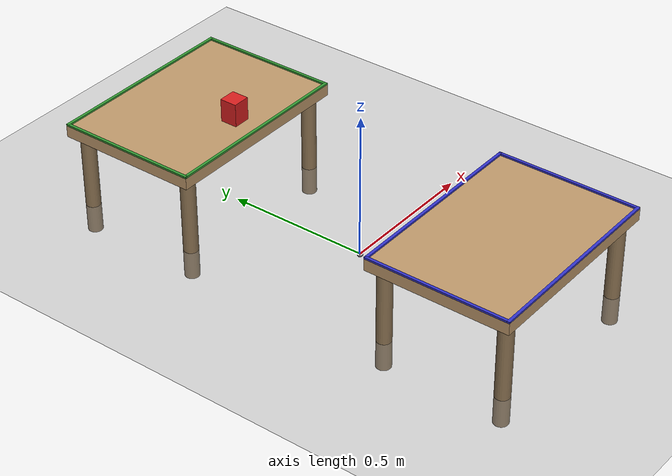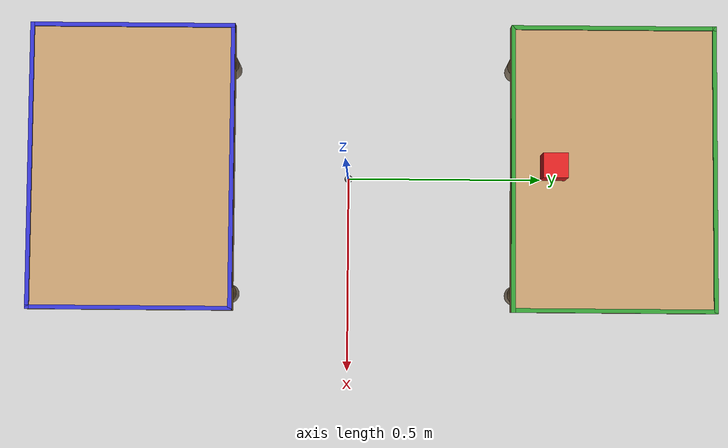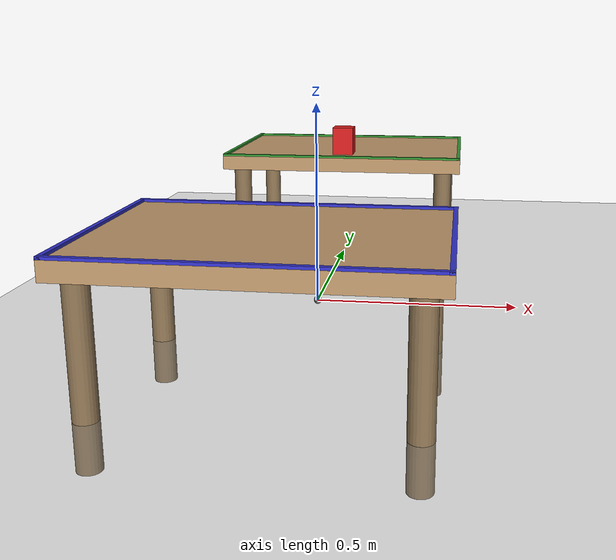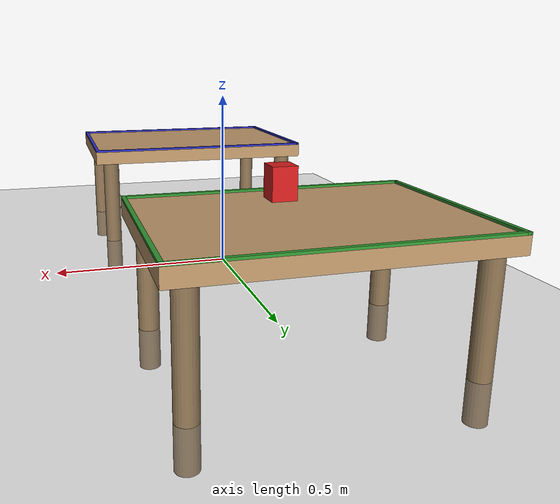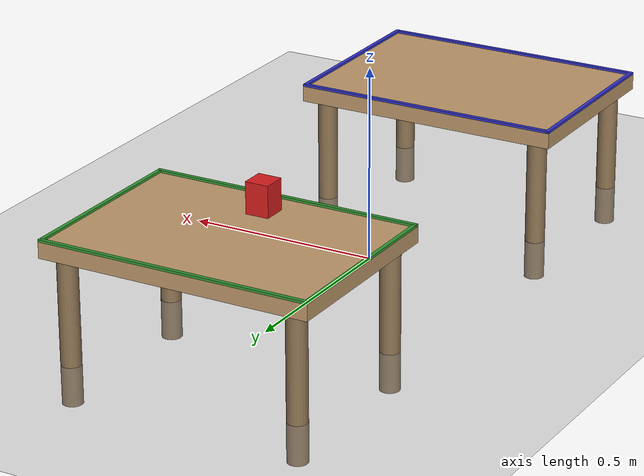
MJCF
<mujoco model="pickandplace">
  <compiler angle="radian" meshdir="meshes" autolimits="true"/>
  <option timestep="0.002" gravity="0 0 -9.81"/>
  <visual>
    <headlight ambient="0.4 0.4 0.4" diffuse="0.8 0.8 0.8" specular="0.1 0.1 0.1"/>
    <rgba haze="0.15 0.25 0.35 1"/>
    <global azimuth="150" elevation="-20"/>
  </visual>

  <asset>
    <!-- 바닥 텍스처 -->
    <texture name="tex_floor" type="2d" builtin="checker"
             rgb1="0.6 0.6 0.6" rgb2="0.5 0.5 0.5"
             width="512" height="512"/>
    <material name="mat_floor" texture="tex_floor"
              texrepeat="4 4" reflectance="0.2"/>

    <!-- 테이블 상판 재질 -->
    <texture name="tex_table" type="2d" builtin="flat"
             rgb1="0.75 0.60 0.42" rgb2="0.75 0.60 0.42"
             width="128" height="128"/>
    <material name="mat_table_top" texture="tex_table"
              specular="0.3" shininess="0.3" reflectance="0.1"/>

    <!-- 테이블 다리 재질 -->
    <material name="mat_table_leg" rgba="0.55 0.45 0.32 1"
              specular="0.2" shininess="0.2"/>

    <!-- 빨간 물체 재질 -->
    <material name="mat_object" rgba="0.85 0.12 0.12 1"
              specular="0.5" shininess="0.5" reflectance="0.05"/>

    <!-- Pick 테이블 라벨용 재질 -->
    <material name="mat_pick_label" rgba="0.2 0.6 0.2 1"/>

    <!-- Place 테이블 라벨용 재질 -->
    <material name="mat_place_label" rgba="0.2 0.2 0.8 1"/>
  </asset>

  <!-- ============================================================
       기본값 (Default)
  ============================================================ -->
  <default>
    <geom condim="3" friction="0.8 0.02 0.01"/>

    <default class="table_top">
      <geom type="box" material="mat_table_top"
            mass="20" contype="1" conaffinity="1"/>
    </default>

    <default class="table_leg">
      <geom type="cylinder" material="mat_table_leg"
            mass="2" contype="1" conaffinity="1"/>
    </default>

    <default class="object">
      <geom type="box" material="mat_object"
            condim="4" friction="1.0 0.05 0.01"
            contype="1" conaffinity="1"/>
      <joint type="free" damping="0.01"/>
    </default>
  </default>

  <!-- ============================================================
       월드 바디 (World Body)
  ============================================================ -->
  <worldbody>

    <!-- 조명 -->
    <light name="main_light" pos="0 0 3.0" dir="0 0 -1"
           diffuse="0.9 0.9 0.9" specular="0.3 0.3 0.3"
           directional="true" castshadow="true"/>
    <light name="fill_light" pos="1.5 -1.5 2.5" dir="-0.4 0.4 -0.8"
           diffuse="0.4 0.4 0.4" specular="0.1 0.1 0.1"
           directional="false" castshadow="false"/>

    <!-- 바닥 -->
    <geom name="floor" type="plane"
          size="5 5 0.1" material="mat_floor"
          contype="1" conaffinity="1" friction="0.8 0.02 0.01"/>
    <site name="robot_base_site" pos="0 0 0" size="0.01"/>

    <body name="table_pick" pos="0.0 0.65 -0.1">

      <!-- 상판: 0.70 × 0.50 × 0.04 m -->
      <geom name="pick_top" class="table_top"
            size="0.35 0.25 0.02"
            pos="0 0 0.385"/>

      <!-- 다리 4개: 반지름 0.025, 반높이 0.1825 (전장 ~0.365 m) -->
      <geom name="pick_leg_fl" class="table_leg"
            size="0.025 0.1825" pos=" 0.30  0.21 0.1825"/>
      <geom name="pick_leg_fr" class="table_leg"
            size="0.025 0.1825" pos=" 0.30 -0.21 0.1825"/>
      <geom name="pick_leg_bl" class="table_leg"
            size="0.025 0.1825" pos="-0.30  0.21 0.1825"/>
      <geom name="pick_leg_br" class="table_leg"
            size="0.025 0.1825" pos="-0.30 -0.21 0.1825"/>

      <!-- Pick 테이블 엣지 마커 (초록색) -->
      <geom name="pick_marker_1" type="box"
            size="0.35 0.005 0.003"
            pos="0 0.245 0.408"
            material="mat_pick_label"
            contype="0" conaffinity="0" mass="0"/>
      <geom name="pick_marker_2" type="box"
            size="0.35 0.005 0.003"
            pos="0 -0.245 0.408"
            material="mat_pick_label"
            contype="0" conaffinity="0" mass="0"/>
      <geom name="pick_marker_3" type="box"
            size="0.25 0.005 0.003"
            pos="0.345 0 0.408"
            euler="0 0 1.5708"
            material="mat_pick_label"
            contype="0" conaffinity="0" mass="0"/>
      <geom name="pick_marker_4" type="box"
            size="0.25 0.005 0.003"
            pos="-0.345 0 0.408"
            euler="0 0 1.5708"
            material="mat_pick_label"
            contype="0" conaffinity="0" mass="0"/>

    </body>

    <body name="table_place" pos="0.0 -0.525 -0.10">

      <geom name="place_top" class="table_top"
            size="0.35 0.25 0.02"
            pos="0 0 0.385"/>

      <geom name="place_leg_fl" class="table_leg"
            size="0.025 0.1825" pos=" 0.30  0.21 0.1825"/>
      <geom name="place_leg_fr" class="table_leg"
            size="0.025 0.1825" pos=" 0.30 -0.21 0.1825"/>
      <geom name="place_leg_bl" class="table_leg"
            size="0.025 0.1825" pos="-0.30  0.21 0.1825"/>
      <geom name="place_leg_br" class="table_leg"
            size="0.025 0.1825" pos="-0.30 -0.21 0.1825"/>

      <geom name="place_marker_1" type="box"
            size="0.35 0.005 0.003"
            pos="0 0.245 0.408"
            material="mat_place_label"
            contype="0" conaffinity="0" mass="0"/>
      <geom name="place_marker_2" type="box"
            size="0.35 0.005 0.003"
            pos="0 -0.245 0.408"
            material="mat_place_label"
            contype="0" conaffinity="0" mass="0"/>
      <geom name="place_marker_3" type="box"
            size="0.25 0.005 0.003"
            pos="0.345 0 0.408"
            euler="0 0 1.5708"
            material="mat_place_label"
            contype="0" conaffinity="0" mass="0"/>
      <geom name="place_marker_4" type="box"
            size="0.25 0.005 0.003"
            pos="-0.345 0 0.408"
            euler="0 0 1.5708"
            material="mat_place_label"
            contype="0" conaffinity="0" mass="0"/>

    </body>

    <body name="red_box" pos="0.0 0.5 0.345">
      <joint name="red_box_joint" class="object"/>
      <geom name="red_box_geom" class="object"
            size="0.030 0.030 0.040"
            mass="0.3"
            rgba="0.85 0.12 0.12 1"/>

      <!-- 물체 중심 사이트 (그래스핑 참조점) -->
      <site name="red_box_center" type="sphere" size="0.005"
            rgba="1 1 0 0.8" pos="0 0 0"/>
    </body>

  </worldbody>

  <!-- ============================================================
       접촉 제외 설정 (필요 시 로봇과 통합할 때 활용)
  ============================================================ -->
  <contact>
    <!-- 테이블끼리는 충돌하지 않도록 -->
    <exclude body1="table_pick" body2="table_place"/>
  </contact>
</mujoco>
